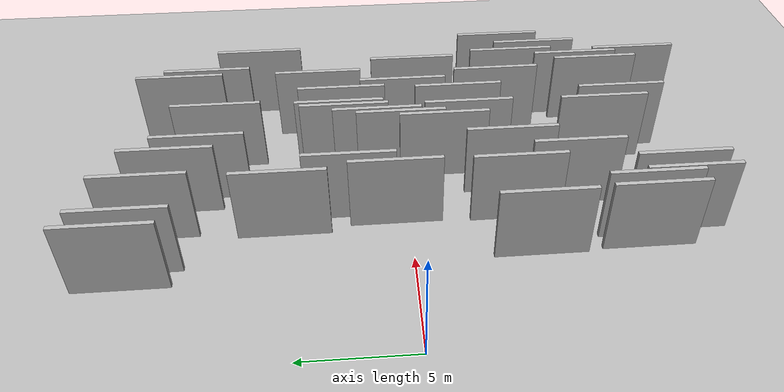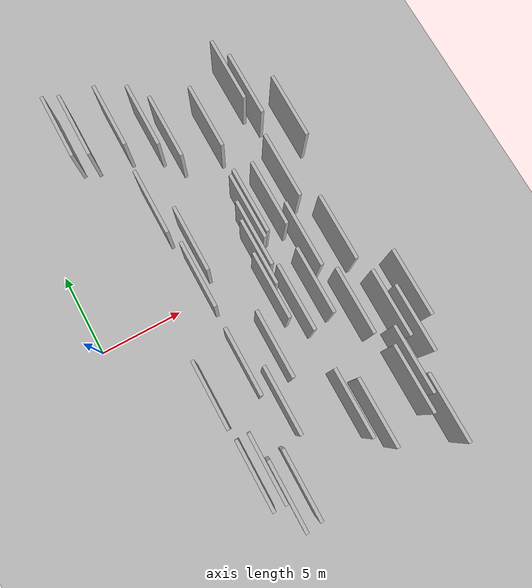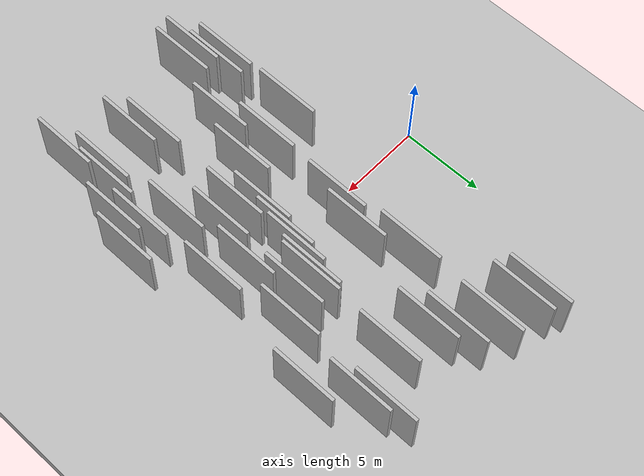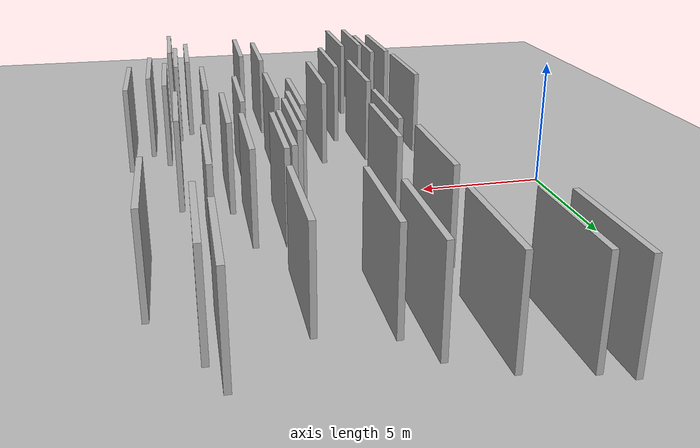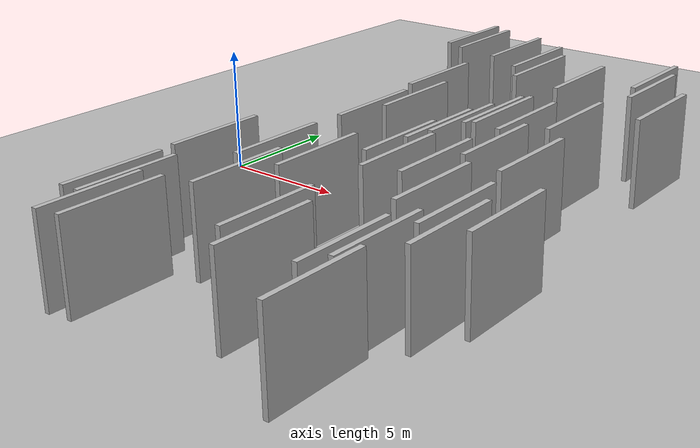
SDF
<?xml version="1.0" encoding="utf-8"?>

<sdf version="1.6">

   <world name="default">

      <gui fullscreen="0">

         <camera name="user_camera">

            <pose>-15 0 4.57585 0 0 0</pose>

            <view_controller>orbit</view_controller>

         </camera>

      </gui>

      <scene>

         <sky>

           <clouds>

             <speed>12</speed>

           </clouds>

         </sky>

         <ambient>0.4 0.4 0.4 1</ambient>

         <background>0.7 0.7 0.7 1</background>

         <shadows>1</shadows>

      </scene>

      <gravity>0 0 -9.8066</gravity>

      <magnetic_field>6e-06 2.3e-05 -4.2e-05</magnetic_field>

      <physics default="0" name="default_physics" type="ode">

         <ode>

            <solver>

               <type>quick</type>

               <iters>10</iters>

               <sor>1.0</sor>

               <use_dynamic_moi_rescaling>0</use_dynamic_moi_rescaling>

            </solver>

            <constraints>

               <cfm>0</cfm>

               <erp>0.2</erp>

               <contact_max_correcting_vel>100</contact_max_correcting_vel>

               <contact_surface_layer>0.001</contact_surface_layer>

            </constraints>

         </ode>

         <max_step_size>0.004</max_step_size>

         <real_time_factor>1</real_time_factor>

         <real_time_update_rate>250</real_time_update_rate>

      </physics>

      <light name="sun" type="directional">

         <cast_shadows>1</cast_shadows>

         <pose>0 0 10 0 0 0</pose>

         <diffuse>0.8 0.8 0.8 1</diffuse>

         <specular>0.2 0.2 0.2 1</specular>

         <attenuation>

            <range>1000</range>

            <constant>0.9</constant>

            <linear>0.01</linear>

            <quadratic>0.001</quadratic>

         </attenuation>

         <direction>-0.5 0.1 -0.9</direction>

      </light>

      <include>

         <name>ground_plane_1</name>

         <uri>model://HANNAS_ground_plane</uri>

         <pose>0 0 0  0 0 0</pose>

      </include>

      <include>

         <name>ground_plane_2</name>

         <uri>model://HANNAS_ground_plane</uri>

         <pose>100 0 0  0 0 0</pose>

      </include>

      <model name="HANNAS_wall_1">

         <static>1</static>

         <pose frame="">6.8083 0.6478 0.0 0.000000 0.000000 1.570796</pose>

         <link name="link">

            <pose frame="">0 0 2.00 0 0 0</pose>

            <collision name="collision">

               <geometry>

                  <box>

                     <size>4.00 0.2 4.00</size>

                  </box>

               </geometry>

               <max_contacts>10</max_contacts>

               <surface>

                  <contact>

                     <ode/>

                  </contact>

                  <bounce/>

                  <friction>

                     <torsional>

                        <ode/>

                     </torsional>

                     <ode/>

                  </friction>

               </surface>

            </collision>

            <visual name="visual">

               <cast_shadows>0</cast_shadows>

               <geometry>

                  <box>

                     <size>4.00 0.2 4.00</size>

                  </box>

               </geometry>

               <material>

                  <script>

                     <uri>model://HANNAS_wall/materials/scripts</uri>

                     <uri>model://HANNAS_wall/materials/textures</uri>

                     <name>vrc/HANNAS_wall</name>

                  </script>

               </material>

            </visual>

            <self_collide>0</self_collide>

            <enable_wind>0</enable_wind>

            <kinematic>0</kinematic>

         </link>

      </model>

      <model name="HANNAS_wall_2">

         <static>1</static>

         <pose frame="">15.7567 -6.8476 0.0 0.000000 0.000000 1.570796</pose>

         <link name="link">

            <pose frame="">0 0 2.00 0 0 0</pose>

            <collision name="collision">

               <geometry>

                  <box>

                     <size>4.00 0.2 4.00</size>

                  </box>

               </geometry>

               <max_contacts>10</max_contacts>

               <surface>

                  <contact>

                     <ode/>

                  </contact>

                  <bounce/>

                  <friction>

                     <torsional>

                        <ode/>

                     </torsional>

                     <ode/>

                  </friction>

               </surface>

            </collision>

            <visual name="visual">

               <cast_shadows>0</cast_shadows>

               <geometry>

                  <box>

                     <size>4.00 0.2 4.00</size>

                  </box>

               </geometry>

               <material>

                  <script>

                     <uri>model://HANNAS_wall/materials/scripts</uri>

                     <uri>model://HANNAS_wall/materials/textures</uri>

                     <name>vrc/HANNAS_wall</name>

                  </script>

               </material>

            </visual>

            <self_collide>0</self_collide>

            <enable_wind>0</enable_wind>

            <kinematic>0</kinematic>

         </link>

      </model>

      <model name="HANNAS_wall_3">

         <static>1</static>

         <pose frame="">14.5750 -8.6801 0.0 0.000000 0.000000 1.570796</pose>

         <link name="link">

            <pose frame="">0 0 2.00 0 0 0</pose>

            <collision name="collision">

               <geometry>

                  <box>

                     <size>4.00 0.2 4.00</size>

                  </box>

               </geometry>

               <max_contacts>10</max_contacts>

               <surface>

                  <contact>

                     <ode/>

                  </contact>

                  <bounce/>

                  <friction>

                     <torsional>

                        <ode/>

                     </torsional>

                     <ode/>

                  </friction>

               </surface>

            </collision>

            <visual name="visual">

               <cast_shadows>0</cast_shadows>

               <geometry>

                  <box>

                     <size>4.00 0.2 4.00</size>

                  </box>

               </geometry>

               <material>

                  <script>

                     <uri>model://HANNAS_wall/materials/scripts</uri>

                     <uri>model://HANNAS_wall/materials/textures</uri>

                     <name>vrc/HANNAS_wall</name>

                  </script>

               </material>

            </visual>

            <self_collide>0</self_collide>

            <enable_wind>0</enable_wind>

            <kinematic>0</kinematic>

         </link>

      </model>

      <model name="HANNAS_wall_4">

         <static>1</static>

         <pose frame="">9.1285 9.0068 0.0 0.000000 0.000000 1.570796</pose>

         <link name="link">

            <pose frame="">0 0 2.00 0 0 0</pose>

            <collision name="collision">

               <geometry>

                  <box>

                     <size>4.00 0.2 4.00</size>

                  </box>

               </geometry>

               <max_contacts>10</max_contacts>

               <surface>

                  <contact>

                     <ode/>

                  </contact>

                  <bounce/>

                  <friction>

                     <torsional>

                        <ode/>

                     </torsional>

                     <ode/>

                  </friction>

               </surface>

            </collision>

            <visual name="visual">

               <cast_shadows>0</cast_shadows>

               <geometry>

                  <box>

                     <size>4.00 0.2 4.00</size>

                  </box>

               </geometry>

               <material>

                  <script>

                     <uri>model://HANNAS_wall/materials/scripts</uri>

                     <uri>model://HANNAS_wall/materials/textures</uri>

                     <name>vrc/HANNAS_wall</name>

                  </script>

               </material>

            </visual>

            <self_collide>0</self_collide>

            <enable_wind>0</enable_wind>

            <kinematic>0</kinematic>

         </link>

      </model>

      <model name="HANNAS_wall_5">

         <static>1</static>

         <pose frame="">12.8604 -0.0715 0.0 0.000000 0.000000 1.570796</pose>

         <link name="link">

            <pose frame="">0 0 2.00 0 0 0</pose>

            <collision name="collision">

               <geometry>

                  <box>

                     <size>4.00 0.2 4.00</size>

                  </box>

               </geometry>

               <max_contacts>10</max_contacts>

               <surface>

                  <contact>

                     <ode/>

                  </contact>

                  <bounce/>

                  <friction>

                     <torsional>

                        <ode/>

                     </torsional>

                     <ode/>

                  </friction>

               </surface>

            </collision>

            <visual name="visual">

               <cast_shadows>0</cast_shadows>

               <geometry>

                  <box>

                     <size>4.00 0.2 4.00</size>

                  </box>

               </geometry>

               <material>

                  <script>

                     <uri>model://HANNAS_wall/materials/scripts</uri>

                     <uri>model://HANNAS_wall/materials/textures</uri>

                     <name>vrc/HANNAS_wall</name>

                  </script>

               </material>

            </visual>

            <self_collide>0</self_collide>

            <enable_wind>0</enable_wind>

            <kinematic>0</kinematic>

         </link>

      </model>

      <model name="HANNAS_wall_6">

         <static>1</static>

         <pose frame="">11.5344 -10.1321 0.0 0.000000 0.000000 1.570796</pose>

         <link name="link">

            <pose frame="">0 0 2.00 0 0 0</pose>

            <collision name="collision">

               <geometry>

                  <box>

                     <size>4.00 0.2 4.00</size>

                  </box>

               </geometry>

               <max_contacts>10</max_contacts>

               <surface>

                  <contact>

                     <ode/>

                  </contact>

                  <bounce/>

                  <friction>

                     <torsional>

                        <ode/>

                     </torsional>

                     <ode/>

                  </friction>

               </surface>

            </collision>

            <visual name="visual">

               <cast_shadows>0</cast_shadows>

               <geometry>

                  <box>

                     <size>4.00 0.2 4.00</size>

                  </box>

               </geometry>

               <material>

                  <script>

                     <uri>model://HANNAS_wall/materials/scripts</uri>

                     <uri>model://HANNAS_wall/materials/textures</uri>

                     <name>vrc/HANNAS_wall</name>

                  </script>

               </material>

            </visual>

            <self_collide>0</self_collide>

            <enable_wind>0</enable_wind>

            <kinematic>0</kinematic>

         </link>

      </model>

      <model name="HANNAS_wall_7">

         <static>1</static>

         <pose frame="">6.3801 -11.3812 0.0 0.000000 0.000000 1.570796</pose>

         <link name="link">

            <pose frame="">0 0 2.00 0 0 0</pose>

            <collision name="collision">

               <geometry>

                  <box>

                     <size>4.00 0.2 4.00</size>

                  </box>

               </geometry>

               <max_contacts>10</max_contacts>

               <surface>

                  <contact>

                     <ode/>

                  </contact>

                  <bounce/>

                  <friction>

                     <torsional>

                        <ode/>

                     </torsional>

                     <ode/>

                  </friction>

               </surface>

            </collision>

            <visual name="visual">

               <cast_shadows>0</cast_shadows>

               <geometry>

                  <box>

                     <size>4.00 0.2 4.00</size>

                  </box>

               </geometry>

               <material>

                  <script>

                     <uri>model://HANNAS_wall/materials/scripts</uri>

                     <uri>model://HANNAS_wall/materials/textures</uri>

                     <name>vrc/HANNAS_wall</name>

                  </script>

               </material>

            </visual>

            <self_collide>0</self_collide>

            <enable_wind>0</enable_wind>

            <kinematic>0</kinematic>

         </link>

      </model>

      <model name="HANNAS_wall_8">

         <static>1</static>

         <pose frame="">14.8507 -11.6433 0.0 0.000000 0.000000 1.570796</pose>

         <link name="link">

            <pose frame="">0 0 2.00 0 0 0</pose>

            <collision name="collision">

               <geometry>

                  <box>

                     <size>4.00 0.2 4.00</size>

                  </box>

               </geometry>

               <max_contacts>10</max_contacts>

               <surface>

                  <contact>

                     <ode/>

                  </contact>

                  <bounce/>

                  <friction>

                     <torsional>

                        <ode/>

                     </torsional>

                     <ode/>

                  </friction>

               </surface>

            </collision>

            <visual name="visual">

               <cast_shadows>0</cast_shadows>

               <geometry>

                  <box>

                     <size>4.00 0.2 4.00</size>

                  </box>

               </geometry>

               <material>

                  <script>

                     <uri>model://HANNAS_wall/materials/scripts</uri>

                     <uri>model://HANNAS_wall/materials/textures</uri>

                     <name>vrc/HANNAS_wall</name>

                  </script>

               </material>

            </visual>

            <self_collide>0</self_collide>

            <enable_wind>0</enable_wind>

            <kinematic>0</kinematic>

         </link>

      </model>

      <model name="HANNAS_wall_9">

         <static>1</static>

         <pose frame="">10.7058 -9.1279 0.0 0.000000 0.000000 1.570796</pose>

         <link name="link">

            <pose frame="">0 0 2.00 0 0 0</pose>

            <collision name="collision">

               <geometry>

                  <box>

                     <size>4.00 0.2 4.00</size>

                  </box>

               </geometry>

               <max_contacts>10</max_contacts>

               <surface>

                  <contact>

                     <ode/>

                  </contact>

                  <bounce/>

                  <friction>

                     <torsional>

                        <ode/>

                     </torsional>

                     <ode/>

                  </friction>

               </surface>

            </collision>

            <visual name="visual">

               <cast_shadows>0</cast_shadows>

               <geometry>

                  <box>

                     <size>4.00 0.2 4.00</size>

                  </box>

               </geometry>

               <material>

                  <script>

                     <uri>model://HANNAS_wall/materials/scripts</uri>

                     <uri>model://HANNAS_wall/materials/textures</uri>

                     <name>vrc/HANNAS_wall</name>

                  </script>

               </material>

            </visual>

            <self_collide>0</self_collide>

            <enable_wind>0</enable_wind>

            <kinematic>0</kinematic>

         </link>

      </model>

      <model name="HANNAS_wall_10">

         <static>1</static>

         <pose frame="">11.2313 2.9331 0.0 0.000000 0.000000 1.570796</pose>

         <link name="link">

            <pose frame="">0 0 2.00 0 0 0</pose>

            <collision name="collision">

               <geometry>

                  <box>

                     <size>4.00 0.2 4.00</size>

                  </box>

               </geometry>

               <max_contacts>10</max_contacts>

               <surface>

                  <contact>

                     <ode/>

                  </contact>

                  <bounce/>

                  <friction>

                     <torsional>

                        <ode/>

                     </torsional>

                     <ode/>

                  </friction>

               </surface>

            </collision>

            <visual name="visual">

               <cast_shadows>0</cast_shadows>

               <geometry>

                  <box>

                     <size>4.00 0.2 4.00</size>

                  </box>

               </geometry>

               <material>

                  <script>

                     <uri>model://HANNAS_wall/materials/scripts</uri>

                     <uri>model://HANNAS_wall/materials/textures</uri>

                     <name>vrc/HANNAS_wall</name>

                  </script>

               </material>

            </visual>

            <self_collide>0</self_collide>

            <enable_wind>0</enable_wind>

            <kinematic>0</kinematic>

         </link>

      </model>

      <model name="HANNAS_wall_11">

         <static>1</static>

         <pose frame="">13.4582 -4.5617 0.0 0.000000 0.000000 1.570796</pose>

         <link name="link">

            <pose frame="">0 0 2.00 0 0 0</pose>

            <collision name="collision">

               <geometry>

                  <box>

                     <size>4.00 0.2 4.00</size>

                  </box>

               </geometry>

               <max_contacts>10</max_contacts>

               <surface>

                  <contact>

                     <ode/>

                  </contact>

                  <bounce/>

                  <friction>

                     <torsional>

                        <ode/>

                     </torsional>

                     <ode/>

                  </friction>

               </surface>

            </collision>

            <visual name="visual">

               <cast_shadows>0</cast_shadows>

               <geometry>

                  <box>

                     <size>4.00 0.2 4.00</size>

                  </box>

               </geometry>

               <material>

                  <script>

                     <uri>model://HANNAS_wall/materials/scripts</uri>

                     <uri>model://HANNAS_wall/materials/textures</uri>

                     <name>vrc/HANNAS_wall</name>

                  </script>

               </material>

            </visual>

            <self_collide>0</self_collide>

            <enable_wind>0</enable_wind>

            <kinematic>0</kinematic>

         </link>

      </model>

      <model name="HANNAS_wall_12">

         <static>1</static>

         <pose frame="">15.8311 6.7744 0.0 0.000000 0.000000 1.570796</pose>

         <link name="link">

            <pose frame="">0 0 2.00 0 0 0</pose>

            <collision name="collision">

               <geometry>

                  <box>

                     <size>4.00 0.2 4.00</size>

                  </box>

               </geometry>

               <max_contacts>10</max_contacts>

               <surface>

                  <contact>

                     <ode/>

                  </contact>

                  <bounce/>

                  <friction>

                     <torsional>

                        <ode/>

                     </torsional>

                     <ode/>

                  </friction>

               </surface>

            </collision>

            <visual name="visual">

               <cast_shadows>0</cast_shadows>

               <geometry>

                  <box>

                     <size>4.00 0.2 4.00</size>

                  </box>

               </geometry>

               <material>

                  <script>

                     <uri>model://HANNAS_wall/materials/scripts</uri>

                     <uri>model://HANNAS_wall/materials/textures</uri>

                     <name>vrc/HANNAS_wall</name>

                  </script>

               </material>

            </visual>

            <self_collide>0</self_collide>

            <enable_wind>0</enable_wind>

            <kinematic>0</kinematic>

         </link>

      </model>

      <model name="HANNAS_wall_13">

         <static>1</static>

         <pose frame="">4.4147 -5.2535 0.0 0.000000 0.000000 1.570796</pose>

         <link name="link">

            <pose frame="">0 0 2.00 0 0 0</pose>

            <collision name="collision">

               <geometry>

                  <box>

                     <size>4.00 0.2 4.00</size>

                  </box>

               </geometry>

               <max_contacts>10</max_contacts>

               <surface>

                  <contact>

                     <ode/>

                  </contact>

                  <bounce/>

                  <friction>

                     <torsional>

                        <ode/>

                     </torsional>

                     <ode/>

                  </friction>

               </surface>

            </collision>

            <visual name="visual">

               <cast_shadows>0</cast_shadows>

               <geometry>

                  <box>

                     <size>4.00 0.2 4.00</size>

                  </box>

               </geometry>

               <material>

                  <script>

                     <uri>model://HANNAS_wall/materials/scripts</uri>

                     <uri>model://HANNAS_wall/materials/textures</uri>

                     <name>vrc/HANNAS_wall</name>

                  </script>

               </material>

            </visual>

            <self_collide>0</self_collide>

            <enable_wind>0</enable_wind>

            <kinematic>0</kinematic>

         </link>

      </model>

      <model name="HANNAS_wall_14">

         <static>1</static>

         <pose frame="">14.0575 -9.5453 0.0 0.000000 0.000000 1.570796</pose>

         <link name="link">

            <pose frame="">0 0 2.00 0 0 0</pose>

            <collision name="collision">

               <geometry>

                  <box>

                     <size>4.00 0.2 4.00</size>

                  </box>

               </geometry>

               <max_contacts>10</max_contacts>

               <surface>

                  <contact>

                     <ode/>

                  </contact>

                  <bounce/>

                  <friction>

                     <torsional>

                        <ode/>

                     </torsional>

                     <ode/>

                  </friction>

               </surface>

            </collision>

            <visual name="visual">

               <cast_shadows>0</cast_shadows>

               <geometry>

                  <box>

                     <size>4.00 0.2 4.00</size>

                  </box>

               </geometry>

               <material>

                  <script>

                     <uri>model://HANNAS_wall/materials/scripts</uri>

                     <uri>model://HANNAS_wall/materials/textures</uri>

                     <name>vrc/HANNAS_wall</name>

                  </script>

               </material>

            </visual>

            <self_collide>0</self_collide>

            <enable_wind>0</enable_wind>

            <kinematic>0</kinematic>

         </link>

      </model>

      <model name="HANNAS_wall_15">

         <static>1</static>

         <pose frame="">13.7512 3.8893 0.0 0.000000 0.000000 1.570796</pose>

         <link name="link">

            <pose frame="">0 0 2.00 0 0 0</pose>

            <collision name="collision">

               <geometry>

                  <box>

                     <size>4.00 0.2 4.00</size>

                  </box>

               </geometry>

               <max_contacts>10</max_contacts>

               <surface>

                  <contact>

                     <ode/>

                  </contact>

                  <bounce/>

                  <friction>

                     <torsional>

                        <ode/>

                     </torsional>

                     <ode/>

                  </friction>

               </surface>

            </collision>

            <visual name="visual">

               <cast_shadows>0</cast_shadows>

               <geometry>

                  <box>

                     <size>4.00 0.2 4.00</size>

                  </box>

               </geometry>

               <material>

                  <script>

                     <uri>model://HANNAS_wall/materials/scripts</uri>

                     <uri>model://HANNAS_wall/materials/textures</uri>

                     <name>vrc/HANNAS_wall</name>

                  </script>

               </material>

            </visual>

            <self_collide>0</self_collide>

            <enable_wind>0</enable_wind>

            <kinematic>0</kinematic>

         </link>

      </model>

      <model name="HANNAS_wall_16">

         <static>1</static>

         <pose frame="">13.8234 10.3676 0.0 0.000000 0.000000 1.570796</pose>

         <link name="link">

            <pose frame="">0 0 2.00 0 0 0</pose>

            <collision name="collision">

               <geometry>

                  <box>

                     <size>4.00 0.2 4.00</size>

                  </box>

               </geometry>

               <max_contacts>10</max_contacts>

               <surface>

                  <contact>

                     <ode/>

                  </contact>

                  <bounce/>

                  <friction>

                     <torsional>

                        <ode/>

                     </torsional>

                     <ode/>

                  </friction>

               </surface>

            </collision>

            <visual name="visual">

               <cast_shadows>0</cast_shadows>

               <geometry>

                  <box>

                     <size>4.00 0.2 4.00</size>

                  </box>

               </geometry>

               <material>

                  <script>

                     <uri>model://HANNAS_wall/materials/scripts</uri>

                     <uri>model://HANNAS_wall/materials/textures</uri>

                     <name>vrc/HANNAS_wall</name>

                  </script>

               </material>

            </visual>

            <self_collide>0</self_collide>

            <enable_wind>0</enable_wind>

            <kinematic>0</kinematic>

         </link>

      </model>

      <model name="HANNAS_wall_17">

         <static>1</static>

         <pose frame="">5.4764 -11.5099 0.0 0.000000 0.000000 1.570796</pose>

         <link name="link">

            <pose frame="">0 0 2.00 0 0 0</pose>

            <collision name="collision">

               <geometry>

                  <box>

                     <size>4.00 0.2 4.00</size>

                  </box>

               </geometry>

               <max_contacts>10</max_contacts>

               <surface>

                  <contact>

                     <ode/>

                  </contact>

                  <bounce/>

                  <friction>

                     <torsional>

                        <ode/>

                     </torsional>

                     <ode/>

                  </friction>

               </surface>

            </collision>

            <visual name="visual">

               <cast_shadows>0</cast_shadows>

               <geometry>

                  <box>

                     <size>4.00 0.2 4.00</size>

                  </box>

               </geometry>

               <material>

                  <script>

                     <uri>model://HANNAS_wall/materials/scripts</uri>

                     <uri>model://HANNAS_wall/materials/textures</uri>

                     <name>vrc/HANNAS_wall</name>

                  </script>

               </material>

            </visual>

            <self_collide>0</self_collide>

            <enable_wind>0</enable_wind>

            <kinematic>0</kinematic>

         </link>

      </model>

      <model name="HANNAS_wall_18">

         <static>1</static>

         <pose frame="">14.6709 -0.6434 0.0 0.000000 0.000000 1.570796</pose>

         <link name="link">

            <pose frame="">0 0 2.00 0 0 0</pose>

            <collision name="collision">

               <geometry>

                  <box>

                     <size>4.00 0.2 4.00</size>

                  </box>

               </geometry>

               <max_contacts>10</max_contacts>

               <surface>

                  <contact>

                     <ode/>

                  </contact>

                  <bounce/>

                  <friction>

                     <torsional>

                        <ode/>

                     </torsional>

                     <ode/>

                  </friction>

               </surface>

            </collision>

            <visual name="visual">

               <cast_shadows>0</cast_shadows>

               <geometry>

                  <box>

                     <size>4.00 0.2 4.00</size>

                  </box>

               </geometry>

               <material>

                  <script>

                     <uri>model://HANNAS_wall/materials/scripts</uri>

                     <uri>model://HANNAS_wall/materials/textures</uri>

                     <name>vrc/HANNAS_wall</name>

                  </script>

               </material>

            </visual>

            <self_collide>0</self_collide>

            <enable_wind>0</enable_wind>

            <kinematic>0</kinematic>

         </link>

      </model>

      <model name="HANNAS_wall_19">

         <static>1</static>

         <pose frame="">4.5210 -9.8627 0.0 0.000000 0.000000 1.570796</pose>

         <link name="link">

            <pose frame="">0 0 2.00 0 0 0</pose>

            <collision name="collision">

               <geometry>

                  <box>

                     <size>4.00 0.2 4.00</size>

                  </box>

               </geometry>

               <max_contacts>10</max_contacts>

               <surface>

                  <contact>

                     <ode/>

                  </contact>

                  <bounce/>

                  <friction>

                     <torsional>

                        <ode/>

                     </torsional>

                     <ode/>

                  </friction>

               </surface>

            </collision>

            <visual name="visual">

               <cast_shadows>0</cast_shadows>

               <geometry>

                  <box>

                     <size>4.00 0.2 4.00</size>

                  </box>

               </geometry>

               <material>

                  <script>

                     <uri>model://HANNAS_wall/materials/scripts</uri>

                     <uri>model://HANNAS_wall/materials/textures</uri>

                     <name>vrc/HANNAS_wall</name>

                  </script>

               </material>

            </visual>

            <self_collide>0</self_collide>

            <enable_wind>0</enable_wind>

            <kinematic>0</kinematic>

         </link>

      </model>

      <model name="HANNAS_wall_20">

         <static>1</static>

         <pose frame="">16.6151 -5.1359 0.0 0.000000 0.000000 1.570796</pose>

         <link name="link">

            <pose frame="">0 0 2.00 0 0 0</pose>

            <collision name="collision">

               <geometry>

                  <box>

                     <size>4.00 0.2 4.00</size>

                  </box>

               </geometry>

               <max_contacts>10</max_contacts>

               <surface>

                  <contact>

                     <ode/>

                  </contact>

                  <bounce/>

                  <friction>

                     <torsional>

                        <ode/>

                     </torsional>

                     <ode/>

                  </friction>

               </surface>

            </collision>

            <visual name="visual">

               <cast_shadows>0</cast_shadows>

               <geometry>

                  <box>

                     <size>4.00 0.2 4.00</size>

                  </box>

               </geometry>

               <material>

                  <script>

                     <uri>model://HANNAS_wall/materials/scripts</uri>

                     <uri>model://HANNAS_wall/materials/textures</uri>

                     <name>vrc/HANNAS_wall</name>

                  </script>

               </material>

            </visual>

            <self_collide>0</self_collide>

            <enable_wind>0</enable_wind>

            <kinematic>0</kinematic>

         </link>

      </model>

      <model name="HANNAS_wall_21">

         <static>1</static>

         <pose frame="">11.3863 8.4530 0.0 0.000000 0.000000 1.570796</pose>

         <link name="link">

            <pose frame="">0 0 2.00 0 0 0</pose>

            <collision name="collision">

               <geometry>

                  <box>

                     <size>4.00 0.2 4.00</size>

                  </box>

               </geometry>

               <max_contacts>10</max_contacts>

               <surface>

                  <contact>

                     <ode/>

                  </contact>

                  <bounce/>

                  <friction>

                     <torsional>

                        <ode/>

                     </torsional>

                     <ode/>

                  </friction>

               </surface>

            </collision>

            <visual name="visual">

               <cast_shadows>0</cast_shadows>

               <geometry>

                  <box>

                     <size>4.00 0.2 4.00</size>

                  </box>

               </geometry>

               <material>

                  <script>

                     <uri>model://HANNAS_wall/materials/scripts</uri>

                     <uri>model://HANNAS_wall/materials/textures</uri>

                     <name>vrc/HANNAS_wall</name>

                  </script>

               </material>

            </visual>

            <self_collide>0</self_collide>

            <enable_wind>0</enable_wind>

            <kinematic>0</kinematic>

         </link>

      </model>

      <model name="HANNAS_wall_22">

         <static>1</static>

         <pose frame="">6.4270 5.4520 0.0 0.000000 0.000000 1.570796</pose>

         <link name="link">

            <pose frame="">0 0 2.00 0 0 0</pose>

            <collision name="collision">

               <geometry>

                  <box>

                     <size>4.00 0.2 4.00</size>

                  </box>

               </geometry>

               <max_contacts>10</max_contacts>

               <surface>

                  <contact>

                     <ode/>

                  </contact>

                  <bounce/>

                  <friction>

                     <torsional>

                        <ode/>

                     </torsional>

                     <ode/>

                  </friction>

               </surface>

            </collision>

            <visual name="visual">

               <cast_shadows>0</cast_shadows>

               <geometry>

                  <box>

                     <size>4.00 0.2 4.00</size>

                  </box>

               </geometry>

               <material>

                  <script>

                     <uri>model://HANNAS_wall/materials/scripts</uri>

                     <uri>model://HANNAS_wall/materials/textures</uri>

                     <name>vrc/HANNAS_wall</name>

                  </script>

               </material>

            </visual>

            <self_collide>0</self_collide>

            <enable_wind>0</enable_wind>

            <kinematic>0</kinematic>

         </link>

      </model>

      <model name="HANNAS_wall_23">

         <static>1</static>

         <pose frame="">8.6111 -4.5456 0.0 0.000000 0.000000 1.570796</pose>

         <link name="link">

            <pose frame="">0 0 2.00 0 0 0</pose>

            <collision name="collision">

               <geometry>

                  <box>

                     <size>4.00 0.2 4.00</size>

                  </box>

               </geometry>

               <max_contacts>10</max_contacts>

               <surface>

                  <contact>

                     <ode/>

                  </contact>

                  <bounce/>

                  <friction>

                     <torsional>

                        <ode/>

                     </torsional>

                     <ode/>

                  </friction>

               </surface>

            </collision>

            <visual name="visual">

               <cast_shadows>0</cast_shadows>

               <geometry>

                  <box>

                     <size>4.00 0.2 4.00</size>

                  </box>

               </geometry>

               <material>

                  <script>

                     <uri>model://HANNAS_wall/materials/scripts</uri>

                     <uri>model://HANNAS_wall/materials/textures</uri>

                     <name>vrc/HANNAS_wall</name>

                  </script>

               </material>

            </visual>

            <self_collide>0</self_collide>

            <enable_wind>0</enable_wind>

            <kinematic>0</kinematic>

         </link>

      </model>

      <model name="HANNAS_wall_24">

         <static>1</static>

         <pose frame="">12.1532 -2.5962 0.0 0.000000 0.000000 1.570796</pose>

         <link name="link">

            <pose frame="">0 0 2.00 0 0 0</pose>

            <collision name="collision">

               <geometry>

                  <box>

                     <size>4.00 0.2 4.00</size>

                  </box>

               </geometry>

               <max_contacts>10</max_contacts>

               <surface>

                  <contact>

                     <ode/>

                  </contact>

                  <bounce/>

                  <friction>

                     <torsional>

                        <ode/>

                     </torsional>

                     <ode/>

                  </friction>

               </surface>

            </collision>

            <visual name="visual">

               <cast_shadows>0</cast_shadows>

               <geometry>

                  <box>

                     <size>4.00 0.2 4.00</size>

                  </box>

               </geometry>

               <material>

                  <script>

                     <uri>model://HANNAS_wall/materials/scripts</uri>

                     <uri>model://HANNAS_wall/materials/textures</uri>

                     <name>vrc/HANNAS_wall</name>

                  </script>

               </material>

            </visual>

            <self_collide>0</self_collide>

            <enable_wind>0</enable_wind>

            <kinematic>0</kinematic>

         </link>

      </model>

      <model name="HANNAS_wall_25">

         <static>1</static>

         <pose frame="">4.6707 11.4849 0.0 0.000000 0.000000 1.570796</pose>

         <link name="link">

            <pose frame="">0 0 2.00 0 0 0</pose>

            <collision name="collision">

               <geometry>

                  <box>

                     <size>4.00 0.2 4.00</size>

                  </box>

               </geometry>

               <max_contacts>10</max_contacts>

               <surface>

                  <contact>

                     <ode/>

                  </contact>

                  <bounce/>

                  <friction>

                     <torsional>

                        <ode/>

                     </torsional>

                     <ode/>

                  </friction>

               </surface>

            </collision>

            <visual name="visual">

               <cast_shadows>0</cast_shadows>

               <geometry>

                  <box>

                     <size>4.00 0.2 4.00</size>

                  </box>

               </geometry>

               <material>

                  <script>

                     <uri>model://HANNAS_wall/materials/scripts</uri>

                     <uri>model://HANNAS_wall/materials/textures</uri>

                     <name>vrc/HANNAS_wall</name>

                  </script>

               </material>

            </visual>

            <self_collide>0</self_collide>

            <enable_wind>0</enable_wind>

            <kinematic>0</kinematic>

         </link>

      </model>

      <model name="HANNAS_wall_26">

         <static>1</static>

         <pose frame="">10.2555 0.1864 0.0 0.000000 0.000000 1.570796</pose>

         <link name="link">

            <pose frame="">0 0 2.00 0 0 0</pose>

            <collision name="collision">

               <geometry>

                  <box>

                     <size>4.00 0.2 4.00</size>

                  </box>

               </geometry>

               <max_contacts>10</max_contacts>

               <surface>

                  <contact>

                     <ode/>

                  </contact>

                  <bounce/>

                  <friction>

                     <torsional>

                        <ode/>

                     </torsional>

                     <ode/>

                  </friction>

               </surface>

            </collision>

            <visual name="visual">

               <cast_shadows>0</cast_shadows>

               <geometry>

                  <box>

                     <size>4.00 0.2 4.00</size>

                  </box>

               </geometry>

               <material>

                  <script>

                     <uri>model://HANNAS_wall/materials/scripts</uri>

                     <uri>model://HANNAS_wall/materials/textures</uri>

                     <name>vrc/HANNAS_wall</name>

                  </script>

               </material>

            </visual>

            <self_collide>0</self_collide>

            <enable_wind>0</enable_wind>

            <kinematic>0</kinematic>

         </link>

      </model>

      <model name="HANNAS_wall_27">

         <static>1</static>

         <pose frame="">7.5503 -7.2655 0.0 0.000000 0.000000 1.570796</pose>

         <link name="link">

            <pose frame="">0 0 2.00 0 0 0</pose>

            <collision name="collision">

               <geometry>

                  <box>

                     <size>4.00 0.2 4.00</size>

                  </box>

               </geometry>

               <max_contacts>10</max_contacts>

               <surface>

                  <contact>

                     <ode/>

                  </contact>

                  <bounce/>

                  <friction>

                     <torsional>

                        <ode/>

                     </torsional>

                     <ode/>

                  </friction>

               </surface>

            </collision>

            <visual name="visual">

               <cast_shadows>0</cast_shadows>

               <geometry>

                  <box>

                     <size>4.00 0.2 4.00</size>

                  </box>

               </geometry>

               <material>

                  <script>

                     <uri>model://HANNAS_wall/materials/scripts</uri>

                     <uri>model://HANNAS_wall/materials/textures</uri>

                     <name>vrc/HANNAS_wall</name>

                  </script>

               </material>

            </visual>

            <self_collide>0</self_collide>

            <enable_wind>0</enable_wind>

            <kinematic>0</kinematic>

         </link>

      </model>

      <model name="HANNAS_wall_28">

         <static>1</static>

         <pose frame="">15.0805 -5.5712 0.0 0.000000 0.000000 1.570796</pose>

         <link name="link">

            <pose frame="">0 0 2.00 0 0 0</pose>

            <collision name="collision">

               <geometry>

                  <box>

                     <size>4.00 0.2 4.00</size>

                  </box>

               </geometry>

               <max_contacts>10</max_contacts>

               <surface>

                  <contact>

                     <ode/>

                  </contact>

                  <bounce/>

                  <friction>

                     <torsional>

                        <ode/>

                     </torsional>

                     <ode/>

                  </friction>

               </surface>

            </collision>

            <visual name="visual">

               <cast_shadows>0</cast_shadows>

               <geometry>

                  <box>

                     <size>4.00 0.2 4.00</size>

                  </box>

               </geometry>

               <material>

                  <script>

                     <uri>model://HANNAS_wall/materials/scripts</uri>

                     <uri>model://HANNAS_wall/materials/textures</uri>

                     <name>vrc/HANNAS_wall</name>

                  </script>

               </material>

            </visual>

            <self_collide>0</self_collide>

            <enable_wind>0</enable_wind>

            <kinematic>0</kinematic>

         </link>

      </model>

      <model name="HANNAS_wall_29">

         <static>1</static>

         <pose frame="">10.5415 1.2352 0.0 0.000000 0.000000 1.570796</pose>

         <link name="link">

            <pose frame="">0 0 2.00 0 0 0</pose>

            <collision name="collision">

               <geometry>

                  <box>

                     <size>4.00 0.2 4.00</size>

                  </box>

               </geometry>

               <max_contacts>10</max_contacts>

               <surface>

                  <contact>

                     <ode/>

                  </contact>

                  <bounce/>

                  <friction>

                     <torsional>

                        <ode/>

                     </torsional>

                     <ode/>

                  </friction>

               </surface>

            </collision>

            <visual name="visual">

               <cast_shadows>0</cast_shadows>

               <geometry>

                  <box>

                     <size>4.00 0.2 4.00</size>

                  </box>

               </geometry>

               <material>

                  <script>

                     <uri>model://HANNAS_wall/materials/scripts</uri>

                     <uri>model://HANNAS_wall/materials/textures</uri>

                     <name>vrc/HANNAS_wall</name>

                  </script>

               </material>

            </visual>

            <self_collide>0</self_collide>

            <enable_wind>0</enable_wind>

            <kinematic>0</kinematic>

         </link>

      </model>

      <model name="HANNAS_wall_30">

         <static>1</static>

         <pose frame="">6.7200 -4.5602 0.0 0.000000 0.000000 1.570796</pose>

         <link name="link">

            <pose frame="">0 0 2.00 0 0 0</pose>

            <collision name="collision">

               <geometry>

                  <box>

                     <size>4.00 0.2 4.00</size>

                  </box>

               </geometry>

               <max_contacts>10</max_contacts>

               <surface>

                  <contact>

                     <ode/>

                  </contact>

                  <bounce/>

                  <friction>

                     <torsional>

                        <ode/>

                     </torsional>

                     <ode/>

                  </friction>

               </surface>

            </collision>

            <visual name="visual">

               <cast_shadows>0</cast_shadows>

               <geometry>

                  <box>

                     <size>4.00 0.2 4.00</size>

                  </box>

               </geometry>

               <material>

                  <script>

                     <uri>model://HANNAS_wall/materials/scripts</uri>

                     <uri>model://HANNAS_wall/materials/textures</uri>

                     <name>vrc/HANNAS_wall</name>

                  </script>

               </material>

            </visual>

            <self_collide>0</self_collide>

            <enable_wind>0</enable_wind>

            <kinematic>0</kinematic>

         </link>

      </model>

      <model name="HANNAS_wall_31">

         <static>1</static>

         <pose frame="">10.8022 -2.9235 0.0 0.000000 0.000000 1.570796</pose>

         <link name="link">

            <pose frame="">0 0 2.00 0 0 0</pose>

            <collision name="collision">

               <geometry>

                  <box>

                     <size>4.00 0.2 4.00</size>

                  </box>

               </geometry>

               <max_contacts>10</max_contacts>

               <surface>

                  <contact>

                     <ode/>

                  </contact>

                  <bounce/>

                  <friction>

                     <torsional>

                        <ode/>

                     </torsional>

                     <ode/>

                  </friction>

               </surface>

            </collision>

            <visual name="visual">

               <cast_shadows>0</cast_shadows>

               <geometry>

                  <box>

                     <size>4.00 0.2 4.00</size>

                  </box>

               </geometry>

               <material>

                  <script>

                     <uri>model://HANNAS_wall/materials/scripts</uri>

                     <uri>model://HANNAS_wall/materials/textures</uri>

                     <name>vrc/HANNAS_wall</name>

                  </script>

               </material>

            </visual>

            <self_collide>0</self_collide>

            <enable_wind>0</enable_wind>

            <kinematic>0</kinematic>

         </link>

      </model>

      <model name="HANNAS_wall_32">

         <static>1</static>

         <pose frame="">6.6581 11.0757 0.0 0.000000 0.000000 1.570796</pose>

         <link name="link">

            <pose frame="">0 0 2.00 0 0 0</pose>

            <collision name="collision">

               <geometry>

                  <box>

                     <size>4.00 0.2 4.00</size>

                  </box>

               </geometry>

               <max_contacts>10</max_contacts>

               <surface>

                  <contact>

                     <ode/>

                  </contact>

                  <bounce/>

                  <friction>

                     <torsional>

                        <ode/>

                     </torsional>

                     <ode/>

                  </friction>

               </surface>

            </collision>

            <visual name="visual">

               <cast_shadows>0</cast_shadows>

               <geometry>

                  <box>

                     <size>4.00 0.2 4.00</size>

                  </box>

               </geometry>

               <material>

                  <script>

                     <uri>model://HANNAS_wall/materials/scripts</uri>

                     <uri>model://HANNAS_wall/materials/textures</uri>

                     <name>vrc/HANNAS_wall</name>

                  </script>

               </material>

            </visual>

            <self_collide>0</self_collide>

            <enable_wind>0</enable_wind>

            <kinematic>0</kinematic>

         </link>

      </model>

      <model name="HANNAS_wall_33">

         <static>1</static>

         <pose frame="">9.9661 -1.7335 0.0 0.000000 0.000000 1.570796</pose>

         <link name="link">

            <pose frame="">0 0 2.00 0 0 0</pose>

            <collision name="collision">

               <geometry>

                  <box>

                     <size>4.00 0.2 4.00</size>

                  </box>

               </geometry>

               <max_contacts>10</max_contacts>

               <surface>

                  <contact>

                     <ode/>

                  </contact>

                  <bounce/>

                  <friction>

                     <torsional>

                        <ode/>

                     </torsional>

                     <ode/>

                  </friction>

               </surface>

            </collision>

            <visual name="visual">

               <cast_shadows>0</cast_shadows>

               <geometry>

                  <box>

                     <size>4.00 0.2 4.00</size>

                  </box>

               </geometry>

               <material>

                  <script>

                     <uri>model://HANNAS_wall/materials/scripts</uri>

                     <uri>model://HANNAS_wall/materials/textures</uri>

                     <name>vrc/HANNAS_wall</name>

                  </script>

               </material>

            </visual>

            <self_collide>0</self_collide>

            <enable_wind>0</enable_wind>

            <kinematic>0</kinematic>

         </link>

      </model>

      <model name="HANNAS_wall_34">

         <static>1</static>

         <pose frame="">10.9491 2.7129 0.0 0.000000 0.000000 1.570796</pose>

         <link name="link">

            <pose frame="">0 0 2.00 0 0 0</pose>

            <collision name="collision">

               <geometry>

                  <box>

                     <size>4.00 0.2 4.00</size>

                  </box>

               </geometry>

               <max_contacts>10</max_contacts>

               <surface>

                  <contact>

                     <ode/>

                  </contact>

                  <bounce/>

                  <friction>

                     <torsional>

                        <ode/>

                     </torsional>

                     <ode/>

                  </friction>

               </surface>

            </collision>

            <visual name="visual">

               <cast_shadows>0</cast_shadows>

               <geometry>

                  <box>

                     <size>4.00 0.2 4.00</size>

                  </box>

               </geometry>

               <material>

                  <script>

                     <uri>model://HANNAS_wall/materials/scripts</uri>

                     <uri>model://HANNAS_wall/materials/textures</uri>

                     <name>vrc/HANNAS_wall</name>

                  </script>

               </material>

            </visual>

            <self_collide>0</self_collide>

            <enable_wind>0</enable_wind>

            <kinematic>0</kinematic>

         </link>

      </model>

      <model name="HANNAS_wall_35">

         <static>1</static>

         <pose frame="">14.2979 9.1388 0.0 0.000000 0.000000 1.570796</pose>

         <link name="link">

            <pose frame="">0 0 2.00 0 0 0</pose>

            <collision name="collision">

               <geometry>

                  <box>

                     <size>4.00 0.2 4.00</size>

                  </box>

               </geometry>

               <max_contacts>10</max_contacts>

               <surface>

                  <contact>

                     <ode/>

                  </contact>

                  <bounce/>

                  <friction>

                     <torsional>

                        <ode/>

                     </torsional>

                     <ode/>

                  </friction>

               </surface>

            </collision>

            <visual name="visual">

               <cast_shadows>0</cast_shadows>

               <geometry>

                  <box>

                     <size>4.00 0.2 4.00</size>

                  </box>

               </geometry>

               <material>

                  <script>

                     <uri>model://HANNAS_wall/materials/scripts</uri>

                     <uri>model://HANNAS_wall/materials/textures</uri>

                     <name>vrc/HANNAS_wall</name>

                  </script>

               </material>

            </visual>

            <self_collide>0</self_collide>

            <enable_wind>0</enable_wind>

            <kinematic>0</kinematic>

         </link>

      </model>

      <model name="HANNAS_wall_36">

         <static>1</static>

         <pose frame="">5.2397 -9.8598 0.0 0.000000 0.000000 1.570796</pose>

         <link name="link">

            <pose frame="">0 0 2.00 0 0 0</pose>

            <collision name="collision">

               <geometry>

                  <box>

                     <size>4.00 0.2 4.00</size>

                  </box>

               </geometry>

               <max_contacts>10</max_contacts>

               <surface>

                  <contact>

                     <ode/>

                  </contact>

                  <bounce/>

                  <friction>

                     <torsional>

                        <ode/>

                     </torsional>

                     <ode/>

                  </friction>

               </surface>

            </collision>

            <visual name="visual">

               <cast_shadows>0</cast_shadows>

               <geometry>

                  <box>

                     <size>4.00 0.2 4.00</size>

                  </box>

               </geometry>

               <material>

                  <script>

                     <uri>model://HANNAS_wall/materials/scripts</uri>

                     <uri>model://HANNAS_wall/materials/textures</uri>

                     <name>vrc/HANNAS_wall</name>

                  </script>

               </material>

            </visual>

            <self_collide>0</self_collide>

            <enable_wind>0</enable_wind>

            <kinematic>0</kinematic>

         </link>

      </model>

      <model name="HANNAS_wall_37">

         <static>1</static>

         <pose frame="">7.3839 2.5765 0.0 0.000000 0.000000 1.570796</pose>

         <link name="link">

            <pose frame="">0 0 2.00 0 0 0</pose>

            <collision name="collision">

               <geometry>

                  <box>

                     <size>4.00 0.2 4.00</size>

                  </box>

               </geometry>

               <max_contacts>10</max_contacts>

               <surface>

                  <contact>

                     <ode/>

                  </contact>

                  <bounce/>

                  <friction>

                     <torsional>

                        <ode/>

                     </torsional>

                     <ode/>

                  </friction>

               </surface>

            </collision>

            <visual name="visual">

               <cast_shadows>0</cast_shadows>

               <geometry>

                  <box>

                     <size>4.00 0.2 4.00</size>

                  </box>

               </geometry>

               <material>

                  <script>

                     <uri>model://HANNAS_wall/materials/scripts</uri>

                     <uri>model://HANNAS_wall/materials/textures</uri>

                     <name>vrc/HANNAS_wall</name>

                  </script>

               </material>

            </visual>

            <self_collide>0</self_collide>

            <enable_wind>0</enable_wind>

            <kinematic>0</kinematic>

         </link>

      </model>

      <model name="HANNAS_wall_38">

         <static>1</static>

         <pose frame="">8.3023 10.2130 0.0 0.000000 0.000000 1.570796</pose>

         <link name="link">

            <pose frame="">0 0 2.00 0 0 0</pose>

            <collision name="collision">

               <geometry>

                  <box>

                     <size>4.00 0.2 4.00</size>

                  </box>

               </geometry>

               <max_contacts>10</max_contacts>

               <surface>

                  <contact>

                     <ode/>

                  </contact>

                  <bounce/>

                  <friction>

                     <torsional>

                        <ode/>

                     </torsional>

                     <ode/>

                  </friction>

               </surface>

            </collision>

            <visual name="visual">

               <cast_shadows>0</cast_shadows>

               <geometry>

                  <box>

                     <size>4.00 0.2 4.00</size>

                  </box>

               </geometry>

               <material>

                  <script>

                     <uri>model://HANNAS_wall/materials/scripts</uri>

                     <uri>model://HANNAS_wall/materials/textures</uri>

                     <name>vrc/HANNAS_wall</name>

                  </script>

               </material>

            </visual>

            <self_collide>0</self_collide>

            <enable_wind>0</enable_wind>

            <kinematic>0</kinematic>

         </link>

      </model>

      <model name="HANNAS_wall_39">

         <static>1</static>

         <pose frame="">3.7982 11.8564 0.0 0.000000 0.000000 1.570796</pose>

         <link name="link">

            <pose frame="">0 0 2.00 0 0 0</pose>

            <collision name="collision">

               <geometry>

                  <box>

                     <size>4.00 0.2 4.00</size>

                  </box>

               </geometry>

               <max_contacts>10</max_contacts>

               <surface>

                  <contact>

                     <ode/>

                  </contact>

                  <bounce/>

                  <friction>

                     <torsional>

                        <ode/>

                     </torsional>

                     <ode/>

                  </friction>

               </surface>

            </collision>

            <visual name="visual">

               <cast_shadows>0</cast_shadows>

               <geometry>

                  <box>

                     <size>4.00 0.2 4.00</size>

                  </box>

               </geometry>

               <material>

                  <script>

                     <uri>model://HANNAS_wall/materials/scripts</uri>

                     <uri>model://HANNAS_wall/materials/textures</uri>

                     <name>vrc/HANNAS_wall</name>

                  </script>

               </material>

            </visual>

            <self_collide>0</self_collide>

            <enable_wind>0</enable_wind>

            <kinematic>0</kinematic>

         </link>

      </model>

      <model name="HANNAS_wall_40">

         <static>1</static>

         <pose frame="">12.3374 2.8116 0.0 0.000000 0.000000 1.570796</pose>

         <link name="link">

            <pose frame="">0 0 2.00 0 0 0</pose>

            <collision name="collision">

               <geometry>

                  <box>

                     <size>4.00 0.2 4.00</size>

                  </box>

               </geometry>

               <max_contacts>10</max_contacts>

               <surface>

                  <contact>

                     <ode/>

                  </contact>

                  <bounce/>

                  <friction>

                     <torsional>

                        <ode/>

                     </torsional>

                     <ode/>

                  </friction>

               </surface>

            </collision>

            <visual name="visual">

               <cast_shadows>0</cast_shadows>

               <geometry>

                  <box>

                     <size>4.00 0.2 4.00</size>

                  </box>

               </geometry>

               <material>

                  <script>

                     <uri>model://HANNAS_wall/materials/scripts</uri>

                     <uri>model://HANNAS_wall/materials/textures</uri>

                     <name>vrc/HANNAS_wall</name>

                  </script>

               </material>

            </visual>

            <self_collide>0</self_collide>

            <enable_wind>0</enable_wind>

            <kinematic>0</kinematic>

         </link>

      </model>

   </world>

</sdf>
